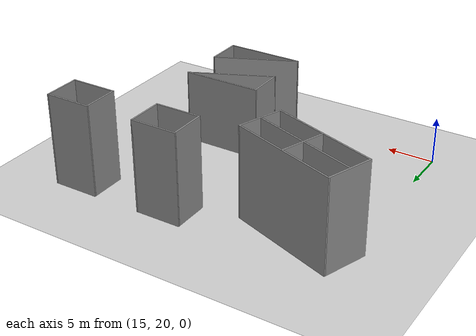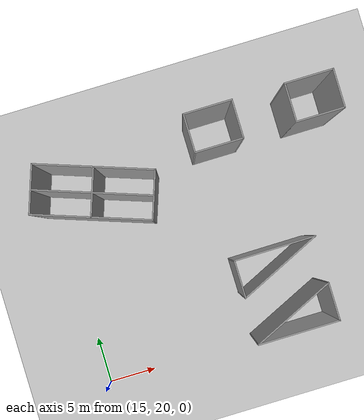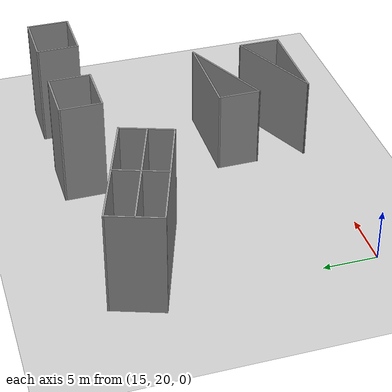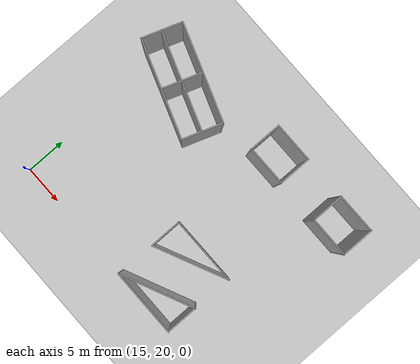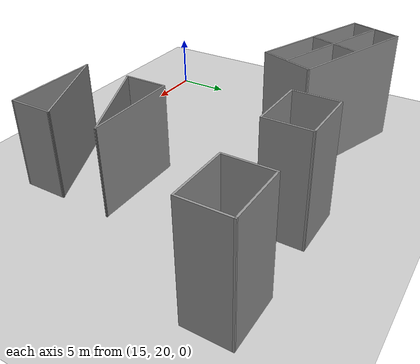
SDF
<sdf version="1.7">
 <world name="default">
  <model name="ground_plane">
   <static>1</static>
   <link name="link">
    <collision name="collision">
     <geometry><plane><normal>0 0 1</normal><size>100 100</size></plane></geometry>
     <surface><friction><ode><mu>100</mu><mu2>50</mu2></ode></friction></surface>
    </collision>
    <visual name="visual">
     <cast_shadows>0</cast_shadows>
     <geometry><plane><normal>0 0 1</normal><size>100 100</size></plane></geometry>
     <material>
      <script><uri>file://media/materials/scripts/gazebo.material</uri><name>Gazebo/Grey</name></script>
     </material>
    </visual>
   </link>
  </model>
  <model name="building2_clone_0_clone">
   <link name="Wall_20">
    <pose>4.175 -1.60474 0 0 0 -1.5708</pose>
    <inertial>
     <mass>1</mass>
     <inertia><ixx>1</ixx><ixy>0</ixy><ixz>0</ixz><iyy>1</iyy><iyz>0</iyz><izz>1</izz></inertia>
    </inertial>
    <visual name="Wall_20_Visual">
     <pose>0 0 4 0 -0 0</pose>
     <geometry><box><size>4 0.15 8</size></box></geometry>
     <material>
      <script><uri>file://media/materials/scripts/gazebo.material</uri><name>Gazebo/Grey</name></script>
      <ambient>0.5 0.5 0.5 1</ambient>
      <shader type="pixel"><normal_map>__default__</normal_map></shader>
      <diffuse>0.5 0.5 0.5 1</diffuse>
      <specular>0.5 0.01 0.5 1</specular>
      <emissive>0 0 0 1</emissive>
     </material>
     <meta><layer>0</layer></meta>
    </visual>
    <collision name="Wall_20_Collision">
     <pose>0 0 4 0 -0 0</pose>
     <geometry><box><size>4 0.15 8</size></box></geometry>
     <surface>
      <friction>
       <ode><mu>1</mu><mu2>1</mu2><fdir1>0 0 0</fdir1><slip1>0</slip1><slip2>0</slip2></ode>
       <torsional>
        <coefficient>1</coefficient>
        <patch_radius>0</patch_radius>
        <surface_radius>0</surface_radius>
        <use_patch_radius>1</use_patch_radius>
        <ode><slip>0</slip></ode>
       </torsional>
      </friction>
      <bounce><restitution_coefficient>0</restitution_coefficient><threshold>1e+06</threshold></bounce>
      <contact>
       <collide_without_contact>0</collide_without_contact>
       <collide_without_contact_bitmask>1</collide_without_contact_bitmask>
       <collide_bitmask>1</collide_bitmask>
       <ode>
        <soft_cfm>0</soft_cfm>
        <soft_erp>0.2</soft_erp>
        <kp>1e+13</kp>
        <kd>1</kd>
        <max_vel>0.01</max_vel>
        <min_depth>0</min_depth>
       </ode>
       <bullet>
        <split_impulse>1</split_impulse>
        <split_impulse_penetration_threshold>-0.01</split_impulse_penetration_threshold>
        <soft_cfm>0</soft_cfm>
        <soft_erp>0.2</soft_erp>
        <kp>1e+13</kp>
        <kd>1</kd>
       </bullet>
      </contact>
     </surface>
    </collision>
   </link>
   <link name="Wall_21">
    <pose>0 -3.52974 0 0 -0 3.14159</pose>
    <inertial>
     <mass>1</mass>
     <inertia><ixx>1</ixx><ixy>0</ixy><ixz>0</ixz><iyy>1</iyy><iyz>0</iyz><izz>1</izz></inertia>
    </inertial>
    <visual name="Wall_21_Visual">
     <pose>0 0 4 0 -0 0</pose>
     <geometry><box><size>8.5 0.15 8</size></box></geometry>
     <material>
      <script><uri>file://media/materials/scripts/gazebo.material</uri><name>Gazebo/Grey</name></script>
      <ambient>0.5 0.5 0.5 1</ambient>
      <shader type="pixel"><normal_map>__default__</normal_map></shader>
      <diffuse>0.5 0.5 0.5 1</diffuse>
      <specular>0.5 0.5 0.5 1</specular>
      <emissive>0 0 0 1</emissive>
     </material>
     <meta><layer>0</layer></meta>
    </visual>
    <collision name="Wall_21_Collision">
     <pose>0 0 4 0 -0 0</pose>
     <geometry><box><size>8.5 0.15 8</size></box></geometry>
     <surface>
      <friction>
       <ode><mu>1</mu><mu2>1</mu2><fdir1>0 0 0</fdir1><slip1>0</slip1><slip2>0</slip2></ode>
       <torsional>
        <coefficient>1</coefficient>
        <patch_radius>0</patch_radius>
        <surface_radius>0</surface_radius>
        <use_patch_radius>1</use_patch_radius>
        <ode><slip>0</slip></ode>
       </torsional>
      </friction>
      <bounce><restitution_coefficient>0</restitution_coefficient><threshold>1e+06</threshold></bounce>
      <contact>
       <collide_without_contact>0</collide_without_contact>
       <collide_without_contact_bitmask>1</collide_without_contact_bitmask>
       <collide_bitmask>1</collide_bitmask>
       <ode>
        <soft_cfm>0</soft_cfm>
        <soft_erp>0.2</soft_erp>
        <kp>1e+13</kp>
        <kd>1</kd>
        <max_vel>0.01</max_vel>
        <min_depth>0</min_depth>
       </ode>
       <bullet>
        <split_impulse>1</split_impulse>
        <split_impulse_penetration_threshold>-0.01</split_impulse_penetration_threshold>
        <soft_cfm>0</soft_cfm>
        <soft_erp>0.2</soft_erp>
        <kp>1e+13</kp>
        <kd>1</kd>
       </bullet>
      </contact>
     </surface>
    </collision>
   </link>
   <link name="Wall_24">
    <pose>0 -1.60474 0 0 -0 0.432028</pose>
    <inertial>
     <mass>1</mass>
     <inertia><ixx>1</ixx><ixy>0</ixy><ixz>0</ixz><iyy>1</iyy><iyz>0</iyz><izz>1</izz></inertia>
    </inertial>
    <visual name="Wall_24_Visual">
     <pose>0 0 4 0 -0 0</pose>
     <geometry><box><size>9.34484 0.15 8</size></box></geometry>
     <material>
      <script><uri>file://media/materials/scripts/gazebo.material</uri><name>Gazebo/Grey</name></script>
      <ambient>0.5 0.5 0.5 1</ambient>
      <shader type="pixel"><normal_map>__default__</normal_map></shader>
      <diffuse>0.5 0.5 0.5 1</diffuse>
      <specular>0.5 0.5 0.5 1</specular>
      <emissive>0 0 0 1</emissive>
     </material>
     <meta><layer>0</layer></meta>
    </visual>
    <collision name="Wall_24_Collision">
     <pose>0 0 4 0 -0 0</pose>
     <geometry><box><size>9.34484 0.15 8</size></box></geometry>
     <surface>
      <friction>
       <ode><mu>1</mu><mu2>1</mu2><fdir1>0 0 0</fdir1><slip1>0</slip1><slip2>0</slip2></ode>
       <torsional>
        <coefficient>1</coefficient>
        <patch_radius>0</patch_radius>
        <surface_radius>0</surface_radius>
        <use_patch_radius>1</use_patch_radius>
        <ode><slip>0</slip></ode>
       </torsional>
      </friction>
      <bounce><restitution_coefficient>0</restitution_coefficient><threshold>1e+06</threshold></bounce>
      <contact>
       <collide_without_contact>0</collide_without_contact>
       <collide_without_contact_bitmask>1</collide_without_contact_bitmask>
       <collide_bitmask>1</collide_bitmask>
       <ode>
        <soft_cfm>0</soft_cfm>
        <soft_erp>0.2</soft_erp>
        <kp>1e+13</kp>
        <kd>1</kd>
        <max_vel>0.01</max_vel>
        <min_depth>0</min_depth>
       </ode>
       <bullet>
        <split_impulse>1</split_impulse>
        <split_impulse_penetration_threshold>-0.01</split_impulse_penetration_threshold>
        <soft_cfm>0</soft_cfm>
        <soft_erp>0.2</soft_erp>
        <kp>1e+13</kp>
        <kd>1</kd>
       </bullet>
      </contact>
     </surface>
    </collision>
   </link>
   <static>1</static>
   <pose>35.3757 24.159 0 0 -0 0</pose>
  </model>
  <model name="building2_clone_0_clone_1">
   <link name="Wall_20">
    <pose>4.175 -1.60474 0 0 0 -1.5708</pose>
    <inertial>
     <mass>1</mass>
     <inertia><ixx>1</ixx><ixy>0</ixy><ixz>0</ixz><iyy>1</iyy><iyz>0</iyz><izz>1</izz></inertia>
    </inertial>
    <visual name="Wall_20_Visual">
     <pose>0 0 4 0 -0 0</pose>
     <geometry><box><size>4 0.15 8</size></box></geometry>
     <material>
      <script><uri>file://media/materials/scripts/gazebo.material</uri><name>Gazebo/Grey</name></script>
      <ambient>0.5 0.5 0.5 1</ambient>
      <shader type="pixel"><normal_map>__default__</normal_map></shader>
      <diffuse>0.5 0.5 0.5 1</diffuse>
      <specular>0.5 0.01 0.5 1</specular>
      <emissive>0 0 0 1</emissive>
     </material>
     <meta><layer>0</layer></meta>
    </visual>
    <collision name="Wall_20_Collision">
     <pose>0 0 4 0 -0 0</pose>
     <geometry><box><size>4 0.15 8</size></box></geometry>
     <surface>
      <friction>
       <ode><mu>1</mu><mu2>1</mu2><fdir1>0 0 0</fdir1><slip1>0</slip1><slip2>0</slip2></ode>
       <torsional>
        <coefficient>1</coefficient>
        <patch_radius>0</patch_radius>
        <surface_radius>0</surface_radius>
        <use_patch_radius>1</use_patch_radius>
        <ode><slip>0</slip></ode>
       </torsional>
      </friction>
      <bounce><restitution_coefficient>0</restitution_coefficient><threshold>1e+06</threshold></bounce>
      <contact>
       <collide_without_contact>0</collide_without_contact>
       <collide_without_contact_bitmask>1</collide_without_contact_bitmask>
       <collide_bitmask>1</collide_bitmask>
       <ode>
        <soft_cfm>0</soft_cfm>
        <soft_erp>0.2</soft_erp>
        <kp>1e+13</kp>
        <kd>1</kd>
        <max_vel>0.01</max_vel>
        <min_depth>0</min_depth>
       </ode>
       <bullet>
        <split_impulse>1</split_impulse>
        <split_impulse_penetration_threshold>-0.01</split_impulse_penetration_threshold>
        <soft_cfm>0</soft_cfm>
        <soft_erp>0.2</soft_erp>
        <kp>1e+13</kp>
        <kd>1</kd>
       </bullet>
      </contact>
     </surface>
    </collision>
   </link>
   <link name="Wall_21">
    <pose>0 -3.52974 0 0 -0 3.14159</pose>
    <inertial>
     <mass>1</mass>
     <inertia><ixx>1</ixx><ixy>0</ixy><ixz>0</ixz><iyy>1</iyy><iyz>0</iyz><izz>1</izz></inertia>
    </inertial>
    <visual name="Wall_21_Visual">
     <pose>0 0 4 0 -0 0</pose>
     <geometry><box><size>8.5 0.15 8</size></box></geometry>
     <material>
      <script><uri>file://media/materials/scripts/gazebo.material</uri><name>Gazebo/Grey</name></script>
      <ambient>0.5 0.5 0.5 1</ambient>
      <shader type="pixel"><normal_map>__default__</normal_map></shader>
      <diffuse>0.5 0.5 0.5 1</diffuse>
      <specular>0.5 0.5 0.5 1</specular>
      <emissive>0 0 0 1</emissive>
     </material>
     <meta><layer>0</layer></meta>
    </visual>
    <collision name="Wall_21_Collision">
     <pose>0 0 4 0 -0 0</pose>
     <geometry><box><size>8.5 0.15 8</size></box></geometry>
     <surface>
      <friction>
       <ode><mu>1</mu><mu2>1</mu2><fdir1>0 0 0</fdir1><slip1>0</slip1><slip2>0</slip2></ode>
       <torsional>
        <coefficient>1</coefficient>
        <patch_radius>0</patch_radius>
        <surface_radius>0</surface_radius>
        <use_patch_radius>1</use_patch_radius>
        <ode><slip>0</slip></ode>
       </torsional>
      </friction>
      <bounce><restitution_coefficient>0</restitution_coefficient><threshold>1e+06</threshold></bounce>
      <contact>
       <collide_without_contact>0</collide_without_contact>
       <collide_without_contact_bitmask>1</collide_without_contact_bitmask>
       <collide_bitmask>1</collide_bitmask>
       <ode>
        <soft_cfm>0</soft_cfm>
        <soft_erp>0.2</soft_erp>
        <kp>1e+13</kp>
        <kd>1</kd>
        <max_vel>0.01</max_vel>
        <min_depth>0</min_depth>
       </ode>
       <bullet>
        <split_impulse>1</split_impulse>
        <split_impulse_penetration_threshold>-0.01</split_impulse_penetration_threshold>
        <soft_cfm>0</soft_cfm>
        <soft_erp>0.2</soft_erp>
        <kp>1e+13</kp>
        <kd>1</kd>
       </bullet>
      </contact>
     </surface>
    </collision>
   </link>
   <link name="Wall_24">
    <pose>0 -1.60474 0 0 -0 0.432028</pose>
    <inertial>
     <mass>1</mass>
     <inertia><ixx>1</ixx><ixy>0</ixy><ixz>0</ixz><iyy>1</iyy><iyz>0</iyz><izz>1</izz></inertia>
    </inertial>
    <visual name="Wall_24_Visual">
     <pose>0 0 4 0 -0 0</pose>
     <geometry><box><size>9.34484 0.15 8</size></box></geometry>
     <material>
      <script><uri>file://media/materials/scripts/gazebo.material</uri><name>Gazebo/Grey</name></script>
      <ambient>0.5 0.5 0.5 1</ambient>
      <shader type="pixel"><normal_map>__default__</normal_map></shader>
      <diffuse>0.5 0.5 0.5 1</diffuse>
      <specular>0.5 0.5 0.5 1</specular>
      <emissive>0 0 0 1</emissive>
     </material>
     <meta><layer>0</layer></meta>
    </visual>
    <collision name="Wall_24_Collision">
     <pose>0 0 4 0 -0 0</pose>
     <geometry><box><size>9.34484 0.15 8</size></box></geometry>
     <surface>
      <friction>
       <ode><mu>1</mu><mu2>1</mu2><fdir1>0 0 0</fdir1><slip1>0</slip1><slip2>0</slip2></ode>
       <torsional>
        <coefficient>1</coefficient>
        <patch_radius>0</patch_radius>
        <surface_radius>0</surface_radius>
        <use_patch_radius>1</use_patch_radius>
        <ode><slip>0</slip></ode>
       </torsional>
      </friction>
      <bounce><restitution_coefficient>0</restitution_coefficient><threshold>1e+06</threshold></bounce>
      <contact>
       <collide_without_contact>0</collide_without_contact>
       <collide_without_contact_bitmask>1</collide_without_contact_bitmask>
       <collide_bitmask>1</collide_bitmask>
       <ode>
        <soft_cfm>0</soft_cfm>
        <soft_erp>0.2</soft_erp>
        <kp>1e+13</kp>
        <kd>1</kd>
        <max_vel>0.01</max_vel>
        <min_depth>0</min_depth>
       </ode>
       <bullet>
        <split_impulse>1</split_impulse>
        <split_impulse_penetration_threshold>-0.01</split_impulse_penetration_threshold>
        <soft_cfm>0</soft_cfm>
        <soft_erp>0.2</soft_erp>
        <kp>1e+13</kp>
        <kd>1</kd>
       </bullet>
      </contact>
     </surface>
    </collision>
   </link>
   <static>1</static>
   <pose>35.4761 25.741 0 0 -0 -3.13725</pose>
  </model>
  <model name="building1_clone_0_clone_2">
   <link name="Wall_12">
    <pose>-1.19 -3.2645 0 0 -0 0</pose>
    <inertial>
     <mass>1</mass>
     <inertia><ixx>1</ixx><ixy>0</ixy><ixz>0</ixz><iyy>1</iyy><iyz>0</iyz><izz>1</izz></inertia>
    </inertial>
    <visual name="Wall_12_Visual">
     <pose>0 0 5 0 -0 0</pose>
     <geometry><box><size>5 0.15 10</size></box></geometry>
     <material>
      <script><uri>file://media/materials/scripts/gazebo.material</uri><name>Gazebo/Grey</name></script>
      <ambient>0.5 0.5 0.5 1</ambient>
      <shader type="pixel"><normal_map>__default__</normal_map></shader>
      <diffuse>0.5 0.5 0.5 1</diffuse>
      <specular>0.5 0.5 0.5 1</specular>
      <emissive>0 0 0 1</emissive>
     </material>
     <meta><layer>0</layer></meta>
    </visual>
    <collision name="Wall_12_Collision">
     <pose>0 0 5 0 -0 0</pose>
     <geometry><box><size>5 0.15 10</size></box></geometry>
     <surface>
      <friction>
       <ode><mu>1</mu><mu2>1</mu2><fdir1>0 0 0</fdir1><slip1>0</slip1><slip2>0</slip2></ode>
       <torsional>
        <coefficient>1</coefficient>
        <patch_radius>0</patch_radius>
        <surface_radius>0</surface_radius>
        <use_patch_radius>1</use_patch_radius>
        <ode><slip>0</slip></ode>
       </torsional>
      </friction>
      <bounce><restitution_coefficient>0</restitution_coefficient><threshold>1e+06</threshold></bounce>
      <contact>
       <collide_without_contact>0</collide_without_contact>
       <collide_without_contact_bitmask>1</collide_without_contact_bitmask>
       <collide_bitmask>1</collide_bitmask>
       <ode>
        <soft_cfm>0</soft_cfm>
        <soft_erp>0.2</soft_erp>
        <kp>1e+13</kp>
        <kd>1</kd>
        <max_vel>0.01</max_vel>
        <min_depth>0</min_depth>
       </ode>
       <bullet>
        <split_impulse>1</split_impulse>
        <split_impulse_penetration_threshold>-0.01</split_impulse_penetration_threshold>
        <soft_cfm>0</soft_cfm>
        <soft_erp>0.2</soft_erp>
        <kp>1e+13</kp>
        <kd>1</kd>
       </bullet>
      </contact>
     </surface>
    </collision>
   </link>
   <link name="Wall_13">
    <pose>1.235 -1.3395 0 0 -0 1.5708</pose>
    <inertial>
     <mass>1</mass>
     <inertia><ixx>1</ixx><ixy>0</ixy><ixz>0</ixz><iyy>1</iyy><iyz>0</iyz><izz>1</izz></inertia>
    </inertial>
    <visual name="Wall_13_Visual">
     <pose>0 0 5 0 -0 0</pose>
     <geometry><box><size>4 0.15 10</size></box></geometry>
     <material>
      <script><uri>file://media/materials/scripts/gazebo.material</uri><name>Gazebo/Grey</name></script>
      <ambient>0.5 0.5 0.5 1</ambient>
      <shader type="pixel"><normal_map>__default__</normal_map></shader>
      <diffuse>0.5 0.5 0.5 1</diffuse>
      <specular>0.5 0.5 0.5 1</specular>
      <emissive>0 0 0 1</emissive>
     </material>
     <meta><layer>0</layer></meta>
    </visual>
    <collision name="Wall_13_Collision">
     <pose>0 0 5 0 -0 0</pose>
     <geometry><box><size>4 0.15 10</size></box></geometry>
     <surface>
      <friction>
       <ode><mu>1</mu><mu2>1</mu2><fdir1>0 0 0</fdir1><slip1>0</slip1><slip2>0</slip2></ode>
       <torsional>
        <coefficient>1</coefficient>
        <patch_radius>0</patch_radius>
        <surface_radius>0</surface_radius>
        <use_patch_radius>1</use_patch_radius>
        <ode><slip>0</slip></ode>
       </torsional>
      </friction>
      <bounce><restitution_coefficient>0</restitution_coefficient><threshold>1e+06</threshold></bounce>
      <contact>
       <collide_without_contact>0</collide_without_contact>
       <collide_without_contact_bitmask>1</collide_without_contact_bitmask>
       <collide_bitmask>1</collide_bitmask>
       <ode>
        <soft_cfm>0</soft_cfm>
        <soft_erp>0.2</soft_erp>
        <kp>1e+13</kp>
        <kd>1</kd>
        <max_vel>0.01</max_vel>
        <min_depth>0</min_depth>
       </ode>
       <bullet>
        <split_impulse>1</split_impulse>
        <split_impulse_penetration_threshold>-0.01</split_impulse_penetration_threshold>
        <soft_cfm>0</soft_cfm>
        <soft_erp>0.2</soft_erp>
        <kp>1e+13</kp>
        <kd>1</kd>
       </bullet>
      </contact>
     </surface>
    </collision>
   </link>
   <link name="Wall_15">
    <pose>-1.19 0.5855 0 0 -0 3.14159</pose>
    <inertial>
     <mass>1</mass>
     <inertia><ixx>1</ixx><ixy>0</ixy><ixz>0</ixz><iyy>1</iyy><iyz>0</iyz><izz>1</izz></inertia>
    </inertial>
    <visual name="Wall_15_Visual">
     <pose>0 0 5 0 -0 0</pose>
     <geometry><box><size>5 0.15 10</size></box></geometry>
     <material>
      <script><uri>file://media/materials/scripts/gazebo.material</uri><name>Gazebo/Grey</name></script>
      <ambient>0.5 0.5 0.5 1</ambient>
      <shader type="pixel"><normal_map>__default__</normal_map></shader>
      <diffuse>0.5 0.5 0.5 1</diffuse>
      <specular>0.5 0.5 0.5 1</specular>
      <emissive>0 0 0 1</emissive>
     </material>
     <meta><layer>0</layer></meta>
    </visual>
    <collision name="Wall_15_Collision">
     <pose>0 0 5 0 -0 0</pose>
     <geometry><box><size>5 0.15 10</size></box></geometry>
     <surface>
      <friction>
       <ode><mu>1</mu><mu2>1</mu2><fdir1>0 0 0</fdir1><slip1>0</slip1><slip2>0</slip2></ode>
       <torsional>
        <coefficient>1</coefficient>
        <patch_radius>0</patch_radius>
        <surface_radius>0</surface_radius>
        <use_patch_radius>1</use_patch_radius>
        <ode><slip>0</slip></ode>
       </torsional>
      </friction>
      <bounce><restitution_coefficient>0</restitution_coefficient><threshold>1e+06</threshold></bounce>
      <contact>
       <collide_without_contact>0</collide_without_contact>
       <collide_without_contact_bitmask>1</collide_without_contact_bitmask>
       <collide_bitmask>1</collide_bitmask>
       <ode>
        <soft_cfm>0</soft_cfm>
        <soft_erp>0.2</soft_erp>
        <kp>1e+13</kp>
        <kd>1</kd>
        <max_vel>0.01</max_vel>
        <min_depth>0</min_depth>
       </ode>
       <bullet>
        <split_impulse>1</split_impulse>
        <split_impulse_penetration_threshold>-0.01</split_impulse_penetration_threshold>
        <soft_cfm>0</soft_cfm>
        <soft_erp>0.2</soft_erp>
        <kp>1e+13</kp>
        <kd>1</kd>
       </bullet>
      </contact>
     </surface>
    </collision>
   </link>
   <link name="Wall_16">
    <pose>-3.615 -1.3395 0 0 0 -1.5708</pose>
    <inertial>
     <mass>1</mass>
     <inertia><ixx>1</ixx><ixy>0</ixy><ixz>0</ixz><iyy>1</iyy><iyz>0</iyz><izz>1</izz></inertia>
    </inertial>
    <visual name="Wall_16_Visual">
     <pose>0 0 5 0 -0 0</pose>
     <geometry><box><size>4 0.15 10</size></box></geometry>
     <material>
      <script><uri>file://media/materials/scripts/gazebo.material</uri><name>Gazebo/Grey</name></script>
      <ambient>0.5 0.5 0.5 1</ambient>
      <shader type="pixel"><normal_map>__default__</normal_map></shader>
      <diffuse>0.5 0.5 0.5 1</diffuse>
      <specular>0.5 0.5 0.5 1</specular>
      <emissive>0 0 0 1</emissive>
     </material>
     <meta><layer>0</layer></meta>
    </visual>
    <collision name="Wall_16_Collision">
     <pose>0 0 5 0 -0 0</pose>
     <geometry><box><size>4 0.15 10</size></box></geometry>
     <surface>
      <friction>
       <ode><mu>1</mu><mu2>1</mu2><fdir1>0 0 0</fdir1><slip1>0</slip1><slip2>0</slip2></ode>
       <torsional>
        <coefficient>1</coefficient>
        <patch_radius>0</patch_radius>
        <surface_radius>0</surface_radius>
        <use_patch_radius>1</use_patch_radius>
        <ode><slip>0</slip></ode>
       </torsional>
      </friction>
      <bounce><restitution_coefficient>0</restitution_coefficient><threshold>1e+06</threshold></bounce>
      <contact>
       <collide_without_contact>0</collide_without_contact>
       <collide_without_contact_bitmask>1</collide_without_contact_bitmask>
       <collide_bitmask>1</collide_bitmask>
       <ode>
        <soft_cfm>0</soft_cfm>
        <soft_erp>0.2</soft_erp>
        <kp>1e+13</kp>
        <kd>1</kd>
        <max_vel>0.01</max_vel>
        <min_depth>0</min_depth>
       </ode>
       <bullet>
        <split_impulse>1</split_impulse>
        <split_impulse_penetration_threshold>-0.01</split_impulse_penetration_threshold>
        <soft_cfm>0</soft_cfm>
        <soft_erp>0.2</soft_erp>
        <kp>1e+13</kp>
        <kd>1</kd>
       </bullet>
      </contact>
     </surface>
    </collision>
   </link>
   <static>1</static>
   <pose>44.3096 43.6567 0 0 -0 0</pose>
  </model>
  <model name="building1_clone_0_clone_3">
   <link name="Wall_12">
    <pose>-1.19 -3.2645 0 0 -0 0</pose>
    <inertial>
     <mass>1</mass>
     <inertia><ixx>1</ixx><ixy>0</ixy><ixz>0</ixz><iyy>1</iyy><iyz>0</iyz><izz>1</izz></inertia>
    </inertial>
    <visual name="Wall_12_Visual">
     <pose>0 0 5 0 -0 0</pose>
     <geometry><box><size>5 0.15 10</size></box></geometry>
     <material>
      <script><uri>file://media/materials/scripts/gazebo.material</uri><name>Gazebo/Grey</name></script>
      <ambient>0.5 0.5 0.5 1</ambient>
      <shader type="pixel"><normal_map>__default__</normal_map></shader>
      <diffuse>0.5 0.5 0.5 1</diffuse>
      <specular>0.5 0.5 0.5 1</specular>
      <emissive>0 0 0 1</emissive>
     </material>
     <meta><layer>0</layer></meta>
    </visual>
    <collision name="Wall_12_Collision">
     <pose>0 0 5 0 -0 0</pose>
     <geometry><box><size>5 0.15 10</size></box></geometry>
     <surface>
      <friction>
       <ode><mu>1</mu><mu2>1</mu2><fdir1>0 0 0</fdir1><slip1>0</slip1><slip2>0</slip2></ode>
       <torsional>
        <coefficient>1</coefficient>
        <patch_radius>0</patch_radius>
        <surface_radius>0</surface_radius>
        <use_patch_radius>1</use_patch_radius>
        <ode><slip>0</slip></ode>
       </torsional>
      </friction>
      <bounce><restitution_coefficient>0</restitution_coefficient><threshold>1e+06</threshold></bounce>
      <contact>
       <collide_without_contact>0</collide_without_contact>
       <collide_without_contact_bitmask>1</collide_without_contact_bitmask>
       <collide_bitmask>1</collide_bitmask>
       <ode>
        <soft_cfm>0</soft_cfm>
        <soft_erp>0.2</soft_erp>
        <kp>1e+13</kp>
        <kd>1</kd>
        <max_vel>0.01</max_vel>
        <min_depth>0</min_depth>
       </ode>
       <bullet>
        <split_impulse>1</split_impulse>
        <split_impulse_penetration_threshold>-0.01</split_impulse_penetration_threshold>
        <soft_cfm>0</soft_cfm>
        <soft_erp>0.2</soft_erp>
        <kp>1e+13</kp>
        <kd>1</kd>
       </bullet>
      </contact>
     </surface>
    </collision>
   </link>
   <link name="Wall_13">
    <pose>1.235 -1.3395 0 0 -0 1.5708</pose>
    <inertial>
     <mass>1</mass>
     <inertia><ixx>1</ixx><ixy>0</ixy><ixz>0</ixz><iyy>1</iyy><iyz>0</iyz><izz>1</izz></inertia>
    </inertial>
    <visual name="Wall_13_Visual">
     <pose>0 0 5 0 -0 0</pose>
     <geometry><box><size>4 0.15 10</size></box></geometry>
     <material>
      <script><uri>file://media/materials/scripts/gazebo.material</uri><name>Gazebo/Grey</name></script>
      <ambient>0.5 0.5 0.5 1</ambient>
      <shader type="pixel"><normal_map>__default__</normal_map></shader>
      <diffuse>0.5 0.5 0.5 1</diffuse>
      <specular>0.5 0.5 0.5 1</specular>
      <emissive>0 0 0 1</emissive>
     </material>
     <meta><layer>0</layer></meta>
    </visual>
    <collision name="Wall_13_Collision">
     <pose>0 0 5 0 -0 0</pose>
     <geometry><box><size>4 0.15 10</size></box></geometry>
     <surface>
      <friction>
       <ode><mu>1</mu><mu2>1</mu2><fdir1>0 0 0</fdir1><slip1>0</slip1><slip2>0</slip2></ode>
       <torsional>
        <coefficient>1</coefficient>
        <patch_radius>0</patch_radius>
        <surface_radius>0</surface_radius>
        <use_patch_radius>1</use_patch_radius>
        <ode><slip>0</slip></ode>
       </torsional>
      </friction>
      <bounce><restitution_coefficient>0</restitution_coefficient><threshold>1e+06</threshold></bounce>
      <contact>
       <collide_without_contact>0</collide_without_contact>
       <collide_without_contact_bitmask>1</collide_without_contact_bitmask>
       <collide_bitmask>1</collide_bitmask>
       <ode>
        <soft_cfm>0</soft_cfm>
        <soft_erp>0.2</soft_erp>
        <kp>1e+13</kp>
        <kd>1</kd>
        <max_vel>0.01</max_vel>
        <min_depth>0</min_depth>
       </ode>
       <bullet>
        <split_impulse>1</split_impulse>
        <split_impulse_penetration_threshold>-0.01</split_impulse_penetration_threshold>
        <soft_cfm>0</soft_cfm>
        <soft_erp>0.2</soft_erp>
        <kp>1e+13</kp>
        <kd>1</kd>
       </bullet>
      </contact>
     </surface>
    </collision>
   </link>
   <link name="Wall_15">
    <pose>-1.19 0.5855 0 0 -0 3.14159</pose>
    <inertial>
     <mass>1</mass>
     <inertia><ixx>1</ixx><ixy>0</ixy><ixz>0</ixz><iyy>1</iyy><iyz>0</iyz><izz>1</izz></inertia>
    </inertial>
    <visual name="Wall_15_Visual">
     <pose>0 0 5 0 -0 0</pose>
     <geometry><box><size>5 0.15 10</size></box></geometry>
     <material>
      <script><uri>file://media/materials/scripts/gazebo.material</uri><name>Gazebo/Grey</name></script>
      <ambient>0.5 0.5 0.5 1</ambient>
      <shader type="pixel"><normal_map>__default__</normal_map></shader>
      <diffuse>0.5 0.5 0.5 1</diffuse>
      <specular>0.5 0.5 0.5 1</specular>
      <emissive>0 0 0 1</emissive>
     </material>
     <meta><layer>0</layer></meta>
    </visual>
    <collision name="Wall_15_Collision">
     <pose>0 0 5 0 -0 0</pose>
     <geometry><box><size>5 0.15 10</size></box></geometry>
     <surface>
      <friction>
       <ode><mu>1</mu><mu2>1</mu2><fdir1>0 0 0</fdir1><slip1>0</slip1><slip2>0</slip2></ode>
       <torsional>
        <coefficient>1</coefficient>
        <patch_radius>0</patch_radius>
        <surface_radius>0</surface_radius>
        <use_patch_radius>1</use_patch_radius>
        <ode><slip>0</slip></ode>
       </torsional>
      </friction>
      <bounce><restitution_coefficient>0</restitution_coefficient><threshold>1e+06</threshold></bounce>
      <contact>
       <collide_without_contact>0</collide_without_contact>
       <collide_without_contact_bitmask>1</collide_without_contact_bitmask>
       <collide_bitmask>1</collide_bitmask>
       <ode>
        <soft_cfm>0</soft_cfm>
        <soft_erp>0.2</soft_erp>
        <kp>1e+13</kp>
        <kd>1</kd>
        <max_vel>0.01</max_vel>
        <min_depth>0</min_depth>
       </ode>
       <bullet>
        <split_impulse>1</split_impulse>
        <split_impulse_penetration_threshold>-0.01</split_impulse_penetration_threshold>
        <soft_cfm>0</soft_cfm>
        <soft_erp>0.2</soft_erp>
        <kp>1e+13</kp>
        <kd>1</kd>
       </bullet>
      </contact>
     </surface>
    </collision>
   </link>
   <link name="Wall_16">
    <pose>-3.615 -1.3395 0 0 0 -1.5708</pose>
    <inertial>
     <mass>1</mass>
     <inertia><ixx>1</ixx><ixy>0</ixy><ixz>0</ixz><iyy>1</iyy><iyz>0</iyz><izz>1</izz></inertia>
    </inertial>
    <visual name="Wall_16_Visual">
     <pose>0 0 5 0 -0 0</pose>
     <geometry><box><size>4 0.15 10</size></box></geometry>
     <material>
      <script><uri>file://media/materials/scripts/gazebo.material</uri><name>Gazebo/Grey</name></script>
      <ambient>0.5 0.5 0.5 1</ambient>
      <shader type="pixel"><normal_map>__default__</normal_map></shader>
      <diffuse>0.5 0.5 0.5 1</diffuse>
      <specular>0.5 0.5 0.5 1</specular>
      <emissive>0 0 0 1</emissive>
     </material>
     <meta><layer>0</layer></meta>
    </visual>
    <collision name="Wall_16_Collision">
     <pose>0 0 5 0 -0 0</pose>
     <geometry><box><size>4 0.15 10</size></box></geometry>
     <surface>
      <friction>
       <ode><mu>1</mu><mu2>1</mu2><fdir1>0 0 0</fdir1><slip1>0</slip1><slip2>0</slip2></ode>
       <torsional>
        <coefficient>1</coefficient>
        <patch_radius>0</patch_radius>
        <surface_radius>0</surface_radius>
        <use_patch_radius>1</use_patch_radius>
        <ode><slip>0</slip></ode>
       </torsional>
      </friction>
      <bounce><restitution_coefficient>0</restitution_coefficient><threshold>1e+06</threshold></bounce>
      <contact>
       <collide_without_contact>0</collide_without_contact>
       <collide_without_contact_bitmask>1</collide_without_contact_bitmask>
       <collide_bitmask>1</collide_bitmask>
       <ode>
        <soft_cfm>0</soft_cfm>
        <soft_erp>0.2</soft_erp>
        <kp>1e+13</kp>
        <kd>1</kd>
        <max_vel>0.01</max_vel>
        <min_depth>0</min_depth>
       </ode>
       <bullet>
        <split_impulse>1</split_impulse>
        <split_impulse_penetration_threshold>-0.01</split_impulse_penetration_threshold>
        <soft_cfm>0</soft_cfm>
        <soft_erp>0.2</soft_erp>
        <kp>1e+13</kp>
        <kd>1</kd>
       </bullet>
      </contact>
     </surface>
    </collision>
   </link>
   <static>1</static>
   <pose>34.145 43.6308 0 0 -0 0</pose>
  </model>
  <model name="building5_clone_clone_clone_3">
   <link name="Wall_64">
    <pose>-1e-06 -4.8275 0 0 -0 0</pose>
    <inertial>
     <mass>1</mass>
     <inertia><ixx>1</ixx><ixy>0</ixy><ixz>0</ixz><iyy>1</iyy><iyz>0</iyz><izz>1</izz></inertia>
    </inertial>
    <visual name="Wall_64_Visual">
     <pose>0 0 5 0 -0 0</pose>
     <geometry><box><size>12 0.15 10</size></box></geometry>
     <material>
      <script><uri>file://media/materials/scripts/gazebo.material</uri><name>Gazebo/Grey</name></script>
      <ambient>0.5 0.5 0.5 1</ambient>
      <shader type="pixel"><normal_map>__default__</normal_map></shader>
      <diffuse>0.5 0.5 0.5 1</diffuse>
      <specular>0.5 0.5 0.5 1</specular>
      <emissive>0 0 0 1</emissive>
     </material>
     <meta><layer>0</layer></meta>
    </visual>
    <collision name="Wall_64_Collision">
     <pose>0 0 5 0 -0 0</pose>
     <geometry><box><size>12 0.15 10</size></box></geometry>
     <surface>
      <friction>
       <ode><mu>1</mu><mu2>1</mu2><fdir1>0 0 0</fdir1><slip1>0</slip1><slip2>0</slip2></ode>
       <torsional>
        <coefficient>1</coefficient>
        <patch_radius>0</patch_radius>
        <surface_radius>0</surface_radius>
        <use_patch_radius>1</use_patch_radius>
        <ode><slip>0</slip></ode>
       </torsional>
      </friction>
      <bounce><restitution_coefficient>0</restitution_coefficient><threshold>1e+06</threshold></bounce>
      <contact>
       <collide_without_contact>0</collide_without_contact>
       <collide_without_contact_bitmask>1</collide_without_contact_bitmask>
       <collide_bitmask>1</collide_bitmask>
       <ode>
        <soft_cfm>0</soft_cfm>
        <soft_erp>0.2</soft_erp>
        <kp>1e+13</kp>
        <kd>1</kd>
        <max_vel>0.01</max_vel>
        <min_depth>0</min_depth>
       </ode>
       <bullet>
        <split_impulse>1</split_impulse>
        <split_impulse_penetration_threshold>-0.01</split_impulse_penetration_threshold>
        <soft_cfm>0</soft_cfm>
        <soft_erp>0.2</soft_erp>
        <kp>1e+13</kp>
        <kd>1</kd>
       </bullet>
      </contact>
     </surface>
    </collision>
   </link>
   <link name="Wall_65">
    <pose>5.925 -2.4025 0 0 -0 1.5708</pose>
    <inertial>
     <mass>1</mass>
     <inertia><ixx>1</ixx><ixy>0</ixy><ixz>0</ixz><iyy>1</iyy><iyz>0</iyz><izz>1</izz></inertia>
    </inertial>
    <visual name="Wall_65_Visual">
     <pose>0 0 5 0 -0 0</pose>
     <geometry><box><size>5 0.15 10</size></box></geometry>
     <material>
      <script><uri>file://media/materials/scripts/gazebo.material</uri><name>Gazebo/Grey</name></script>
      <ambient>0.5 0.5 0.5 1</ambient>
      <shader type="pixel"><normal_map>__default__</normal_map></shader>
      <diffuse>0.5 0.5 0.5 1</diffuse>
      <specular>0.5 0.5 0.5 1</specular>
      <emissive>0 0 0 1</emissive>
     </material>
     <meta><layer>0</layer></meta>
    </visual>
    <collision name="Wall_65_Collision">
     <pose>0 0 5 0 -0 0</pose>
     <geometry><box><size>5 0.15 10</size></box></geometry>
     <surface>
      <friction>
       <ode><mu>1</mu><mu2>1</mu2><fdir1>0 0 0</fdir1><slip1>0</slip1><slip2>0</slip2></ode>
       <torsional>
        <coefficient>1</coefficient>
        <patch_radius>0</patch_radius>
        <surface_radius>0</surface_radius>
        <use_patch_radius>1</use_patch_radius>
        <ode><slip>0</slip></ode>
       </torsional>
      </friction>
      <bounce><restitution_coefficient>0</restitution_coefficient><threshold>1e+06</threshold></bounce>
      <contact>
       <collide_without_contact>0</collide_without_contact>
       <collide_without_contact_bitmask>1</collide_without_contact_bitmask>
       <collide_bitmask>1</collide_bitmask>
       <ode>
        <soft_cfm>0</soft_cfm>
        <soft_erp>0.2</soft_erp>
        <kp>1e+13</kp>
        <kd>1</kd>
        <max_vel>0.01</max_vel>
        <min_depth>0</min_depth>
       </ode>
       <bullet>
        <split_impulse>1</split_impulse>
        <split_impulse_penetration_threshold>-0.01</split_impulse_penetration_threshold>
        <soft_cfm>0</soft_cfm>
        <soft_erp>0.2</soft_erp>
        <kp>1e+13</kp>
        <kd>1</kd>
       </bullet>
      </contact>
     </surface>
    </collision>
   </link>
   <link name="Wall_66">
    <pose>0 0.0225 0 0 -0 3.14159</pose>
    <inertial>
     <mass>1</mass>
     <inertia><ixx>1</ixx><ixy>0</ixy><ixz>0</ixz><iyy>1</iyy><iyz>0</iyz><izz>1</izz></inertia>
    </inertial>
    <visual name="Wall_66_Visual">
     <pose>0 0 5 0 -0 0</pose>
     <geometry><box><size>12 0.15 10</size></box></geometry>
     <material>
      <script><uri>file://media/materials/scripts/gazebo.material</uri><name>Gazebo/Grey</name></script>
      <ambient>0.5 0.5 0.5 1</ambient>
      <shader type="pixel"><normal_map>__default__</normal_map></shader>
      <diffuse>0.5 0.5 0.5 1</diffuse>
      <specular>0.5 0.5 0.5 1</specular>
      <emissive>0 0 0 1</emissive>
     </material>
     <meta><layer>0</layer></meta>
    </visual>
    <collision name="Wall_66_Collision">
     <pose>0 0 5 0 -0 0</pose>
     <geometry><box><size>12 0.15 10</size></box></geometry>
     <surface>
      <friction>
       <ode><mu>1</mu><mu2>1</mu2><fdir1>0 0 0</fdir1><slip1>0</slip1><slip2>0</slip2></ode>
       <torsional>
        <coefficient>1</coefficient>
        <patch_radius>0</patch_radius>
        <surface_radius>0</surface_radius>
        <use_patch_radius>1</use_patch_radius>
        <ode><slip>0</slip></ode>
       </torsional>
      </friction>
      <bounce><restitution_coefficient>0</restitution_coefficient><threshold>1e+06</threshold></bounce>
      <contact>
       <collide_without_contact>0</collide_without_contact>
       <collide_without_contact_bitmask>1</collide_without_contact_bitmask>
       <collide_bitmask>1</collide_bitmask>
       <ode>
        <soft_cfm>0</soft_cfm>
        <soft_erp>0.2</soft_erp>
        <kp>1e+13</kp>
        <kd>1</kd>
        <max_vel>0.01</max_vel>
        <min_depth>0</min_depth>
       </ode>
       <bullet>
        <split_impulse>1</split_impulse>
        <split_impulse_penetration_threshold>-0.01</split_impulse_penetration_threshold>
        <soft_cfm>0</soft_cfm>
        <soft_erp>0.2</soft_erp>
        <kp>1e+13</kp>
        <kd>1</kd>
       </bullet>
      </contact>
     </surface>
    </collision>
   </link>
   <link name="Wall_67">
    <pose>-5.925 -2.4025 0 0 0 -1.5708</pose>
    <inertial>
     <mass>1</mass>
     <inertia><ixx>1</ixx><ixy>0</ixy><ixz>0</ixz><iyy>1</iyy><iyz>0</iyz><izz>1</izz></inertia>
    </inertial>
    <visual name="Wall_67_Visual">
     <pose>0 0 5 0 -0 0</pose>
     <geometry><box><size>5 0.15 10</size></box></geometry>
     <material>
      <script><uri>file://media/materials/scripts/gazebo.material</uri><name>Gazebo/Grey</name></script>
      <ambient>0.5 0.5 0.5 1</ambient>
      <shader type="pixel"><normal_map>__default__</normal_map></shader>
      <diffuse>0.5 0.5 0.5 1</diffuse>
      <specular>0.5 0.5 0.5 1</specular>
      <emissive>0 0 0 1</emissive>
     </material>
     <meta><layer>0</layer></meta>
    </visual>
    <collision name="Wall_67_Collision">
     <pose>0 0 5 0 -0 0</pose>
     <geometry><box><size>5 0.15 10</size></box></geometry>
     <surface>
      <friction>
       <ode><mu>1</mu><mu2>1</mu2><fdir1>0 0 0</fdir1><slip1>0</slip1><slip2>0</slip2></ode>
       <torsional>
        <coefficient>1</coefficient>
        <patch_radius>0</patch_radius>
        <surface_radius>0</surface_radius>
        <use_patch_radius>1</use_patch_radius>
        <ode><slip>0</slip></ode>
       </torsional>
      </friction>
      <bounce><restitution_coefficient>0</restitution_coefficient><threshold>1e+06</threshold></bounce>
      <contact>
       <collide_without_contact>0</collide_without_contact>
       <collide_without_contact_bitmask>1</collide_without_contact_bitmask>
       <collide_bitmask>1</collide_bitmask>
       <ode>
        <soft_cfm>0</soft_cfm>
        <soft_erp>0.2</soft_erp>
        <kp>1e+13</kp>
        <kd>1</kd>
        <max_vel>0.01</max_vel>
        <min_depth>0</min_depth>
       </ode>
       <bullet>
        <split_impulse>1</split_impulse>
        <split_impulse_penetration_threshold>-0.01</split_impulse_penetration_threshold>
        <soft_cfm>0</soft_cfm>
        <soft_erp>0.2</soft_erp>
        <kp>1e+13</kp>
        <kd>1</kd>
       </bullet>
      </contact>
     </surface>
    </collision>
   </link>
   <link name="Wall_69">
    <pose>0 -2.3885 0 0 0 -1.5708</pose>
    <inertial>
     <mass>1</mass>
     <inertia><ixx>1</ixx><ixy>0</ixy><ixz>0</ixz><iyy>1</iyy><iyz>0</iyz><izz>1</izz></inertia>
    </inertial>
    <visual name="Wall_69_Visual">
     <pose>0 0 5 0 -0 0</pose>
     <geometry><box><size>4.9 0.15 10</size></box></geometry>
     <material>
      <script><uri>file://media/materials/scripts/gazebo.material</uri><name>Gazebo/Grey</name></script>
      <ambient>0.5 0.5 0.5 1</ambient>
      <shader type="pixel"><normal_map>__default__</normal_map></shader>
      <diffuse>0.5 0.5 0.5 1</diffuse>
      <specular>0.5 0.5 0.5 1</specular>
      <emissive>0 0 0 1</emissive>
     </material>
     <meta><layer>0</layer></meta>
    </visual>
    <collision name="Wall_69_Collision">
     <pose>0 0 5 0 -0 0</pose>
     <geometry><box><size>4.9 0.15 10</size></box></geometry>
     <surface>
      <friction>
       <ode><mu>1</mu><mu2>1</mu2><fdir1>0 0 0</fdir1><slip1>0</slip1><slip2>0</slip2></ode>
       <torsional>
        <coefficient>1</coefficient>
        <patch_radius>0</patch_radius>
        <surface_radius>0</surface_radius>
        <use_patch_radius>1</use_patch_radius>
        <ode><slip>0</slip></ode>
       </torsional>
      </friction>
      <bounce><restitution_coefficient>0</restitution_coefficient><threshold>1e+06</threshold></bounce>
      <contact>
       <collide_without_contact>0</collide_without_contact>
       <collide_without_contact_bitmask>1</collide_without_contact_bitmask>
       <collide_bitmask>1</collide_bitmask>
       <ode>
        <soft_cfm>0</soft_cfm>
        <soft_erp>0.2</soft_erp>
        <kp>1e+13</kp>
        <kd>1</kd>
        <max_vel>0.01</max_vel>
        <min_depth>0</min_depth>
       </ode>
       <bullet>
        <split_impulse>1</split_impulse>
        <split_impulse_penetration_threshold>-0.01</split_impulse_penetration_threshold>
        <soft_cfm>0</soft_cfm>
        <soft_erp>0.2</soft_erp>
        <kp>1e+13</kp>
        <kd>1</kd>
       </bullet>
      </contact>
     </surface>
    </collision>
   </link>
   <link name="Wall_74">
    <pose>-0.024 -2.4605 0 0 -0 0</pose>
    <inertial>
     <mass>1</mass>
     <inertia><ixx>1</ixx><ixy>0</ixy><ixz>0</ixz><iyy>1</iyy><iyz>0</iyz><izz>1</izz></inertia>
    </inertial>
    <visual name="Wall_74_Visual">
     <pose>0 0 5 0 -0 0</pose>
     <geometry><box><size>11.9 0.15 10</size></box></geometry>
     <material>
      <script><uri>file://media/materials/scripts/gazebo.material</uri><name>Gazebo/Grey</name></script>
      <ambient>0.5 0.5 0.5 1</ambient>
      <shader type="pixel"><normal_map>__default__</normal_map></shader>
      <diffuse>0.5 0.5 0.5 1</diffuse>
      <specular>0.5 0.5 0.5 1</specular>
      <emissive>0 0 0 1</emissive>
     </material>
     <meta><layer>0</layer></meta>
    </visual>
    <collision name="Wall_74_Collision">
     <pose>0 0 5 0 -0 0</pose>
     <geometry><box><size>11.9 0.15 10</size></box></geometry>
     <surface>
      <friction>
       <ode><mu>1</mu><mu2>1</mu2><fdir1>0 0 0</fdir1><slip1>0</slip1><slip2>0</slip2></ode>
       <torsional>
        <coefficient>1</coefficient>
        <patch_radius>0</patch_radius>
        <surface_radius>0</surface_radius>
        <use_patch_radius>1</use_patch_radius>
        <ode><slip>0</slip></ode>
       </torsional>
      </friction>
      <bounce><restitution_coefficient>0</restitution_coefficient><threshold>1e+06</threshold></bounce>
      <contact>
       <collide_without_contact>0</collide_without_contact>
       <collide_without_contact_bitmask>1</collide_without_contact_bitmask>
       <collide_bitmask>1</collide_bitmask>
       <ode>
        <soft_cfm>0</soft_cfm>
        <soft_erp>0.2</soft_erp>
        <kp>1e+13</kp>
        <kd>1</kd>
        <max_vel>0.01</max_vel>
        <min_depth>0</min_depth>
       </ode>
       <bullet>
        <split_impulse>1</split_impulse>
        <split_impulse_penetration_threshold>-0.01</split_impulse_penetration_threshold>
        <soft_cfm>0</soft_cfm>
        <soft_erp>0.2</soft_erp>
        <kp>1e+13</kp>
        <kd>1</kd>
       </bullet>
      </contact>
     </surface>
    </collision>
   </link>
   <static>1</static>
   <pose>20.8068 41.8542 0 0 0 -0.337252</pose>
  </model>
 </world>
</sdf>
